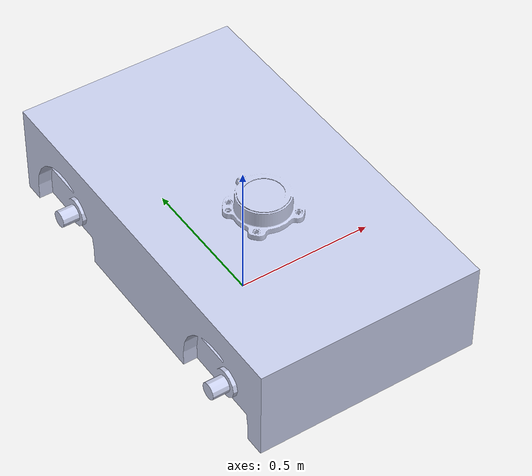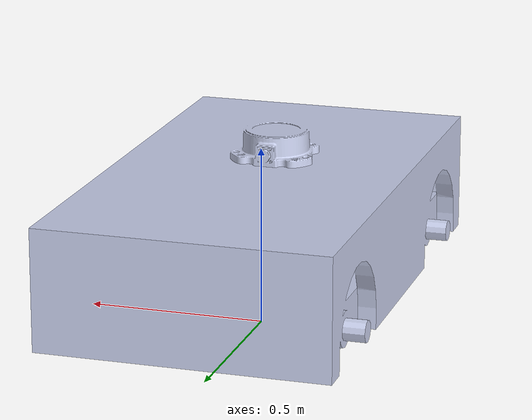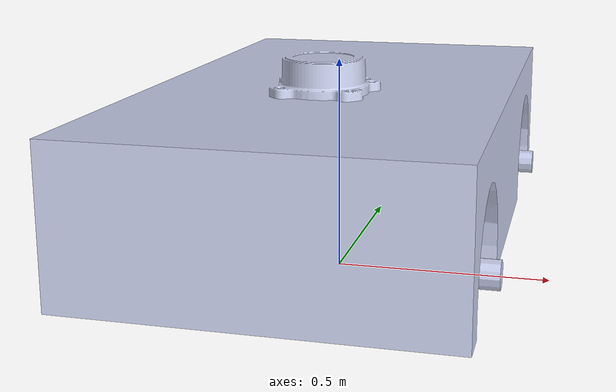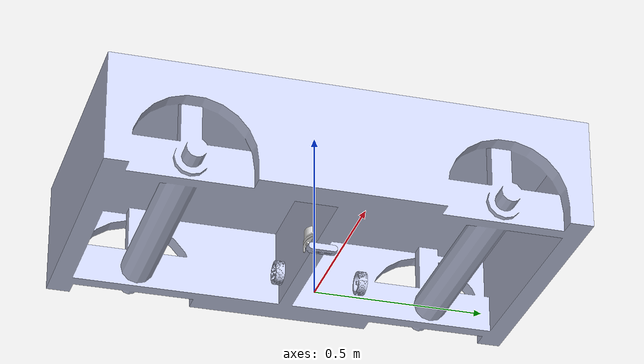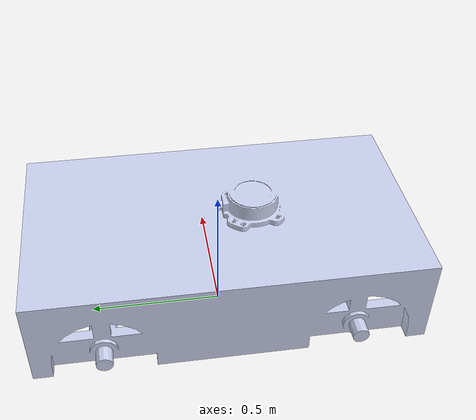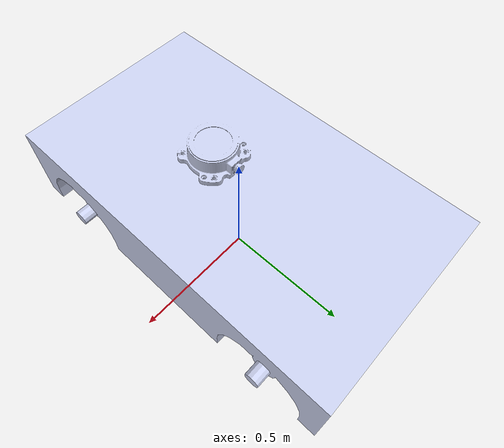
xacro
<?xml version='1.0'?>

<robot name="robot_description" xmlns:xacro="http://www.ros.org/wiki/xacro">

    <xacro:include filename="$(find robot_description)/urdf/materials.xacro" />
    <xacro:include filename="$(find robot_description)/urdf/robot.gazebo" />
    <xacro:include filename="$(find robot_description)/urdf/robot_description.urdf" />

</robot>

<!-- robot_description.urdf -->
<robot
  name="robot_description">
  <link
    name="base_link">
    <inertial>
      <origin
        xyz="0.0035754 -1.518E-09 0.05893"
        rpy="0 0 0" />
      <mass
        value="0.33865" />
      <inertia
        ixx="0.00089067"
        ixy="1.0848E-09"
        ixz="8.0631E-12"
        iyy="0.00089441"
        iyz="-3.7721E-13"
        izz="0.0017779" />
    </inertial>
    <visual>
      <origin
        xyz="0 0 0"
        rpy="0 0 0" />
      <geometry>
        <mesh
          filename="package://robot_description/meshes/base_link.STL" />
      </geometry>
      <material
        name="">
        <color
          rgba="0.79216 0.81961 0.93333 1" />
      </material>
    </visual>
    <collision>
      <origin
        xyz="0 0 0"
        rpy="0 0 0" />
      <geometry>
        <mesh
          filename="package://robot_description/meshes/base_link.STL" />
      </geometry>
    </collision>
  </link>
  <link
    name="r_wheel">
    <inertial>
      <origin
        xyz="-5.8816E-06 -0.013217 6.9219E-06"
        rpy="0 0 0" />
      <mass
        value="0.044423" />
      <inertia
        ixx="2.0144E-05"
        ixy="-2.1565E-10"
        ixz="-7.2576E-09"
        iyy="3.5561E-05"
        iyz="-1.0364E-10"
        izz="2.0144E-05" />
    </inertial>
    <visual>
      <origin
        xyz="0 0 0"
        rpy="0 0 0" />
      <geometry>
        <mesh
          filename="package://robot_description/meshes/r_wheel.STL" />
      </geometry>
      <material
        name="">
        <color
          rgba="0.79216 0.81961 0.93333 1" />
      </material>
    </visual>
    <collision>
      <origin
        xyz="0 0 0"
        rpy="0 0 0" />
      <geometry>
        <mesh
          filename="package://robot_description/meshes/r_wheel.STL" />
      </geometry>
    </collision>
  </link>
  <joint
    name="r_wheel_joint"
    type="continuous">
    <origin
      xyz="0.051833 -0.1085 0.02"
      rpy="0 0 0" />
    <parent
      link="base_link" />
    <child
      link="r_wheel" />
    <axis
      xyz="0 -1 0" />
  </joint>
  <link
    name="l_wheel">
    <inertial>
      <origin
        xyz="9.01458438498648E-06 0.0132166249702712 -1.11460776607009E-06"
        rpy="0 0 0" />
      <mass
        value="0.044422854949021" />
      <inertia
        ixx="2.01509333913829E-05"
        ixy="-3.18027235118427E-11"
        ixz="-2.83951902060619E-09"
        iyy="3.55612270238749E-05"
        iyz="2.37159316317813E-10"
        izz="2.0137574928078E-05" />
    </inertial>
    <visual>
      <origin
        xyz="0 0 0"
        rpy="0 0 0" />
      <geometry>
        <mesh
          filename="package://robot_description/meshes/l_wheel.STL" />
      </geometry>
      <material
        name="">
        <color
          rgba="0.792156862745098 0.819607843137255 0.933333333333333 1" />
      </material>
    </visual>
    <collision>
      <origin
        xyz="0 0 0"
        rpy="0 0 0" />
      <geometry>
        <mesh
          filename="package://robot_description/meshes/l_wheel.STL" />
      </geometry>
    </collision>
  </link>
  <joint
    name="l_wheel_joint"
    type="continuous">
    <origin
      xyz="0.051833 0.1085 0.02"
      rpy="0 0 0" />
    <parent
      link="base_link" />
    <child
      link="l_wheel" />
    <axis
      xyz="0 1 0" />
  </joint>
  <link
    name="camera_link">
    <inertial>
      <origin
        xyz="-0.0130484997995744 0.00024619675186878 -6.05673365648429E-05"
        rpy="0 0 0" />
      <mass
        value="0.0447522009689823" />
      <inertia
        ixx="2.72775274833716E-05"
        ixy="2.44341098323841E-07"
        ixz="-1.17396572383072E-09"
        iyy="3.94471808587631E-06"
        iyz="-2.80138997339365E-09"
        izz="2.73620912559789E-05" />
    </inertial>
    <visual>
      <origin
        xyz="0 0 0"
        rpy="0 0 0" />
      <geometry>
        <mesh
          filename="package://robot_description/meshes/camera_link.STL" />
      </geometry>
      <material
        name="">
        <color
          rgba="0.792156862745098 0.819607843137255 0.933333333333333 1" />
      </material>
    </visual>
    <collision>
      <origin
        xyz="0 0 0"
        rpy="0 0 0" />
      <geometry>
        <mesh
          filename="package://robot_description/meshes/camera_link.STL" />
      </geometry>
    </collision>
  </link>
  <joint
    name="camera_joint"
    type="fixed">
    <origin
      xyz="0.094783 0 0.0985"
      rpy="0 0 0" />
    <parent
      link="base_link" />
    <child
      link="camera_link" />
    <axis
      xyz="0 0 0" />
  </joint>
  <link
    name="base_laser">
    <inertial>
      <origin
        xyz="0 0 0"
        rpy="0 0 0" />
      <mass
        value="0" />
      <inertia
        ixx="0"
        ixy="0"
        ixz="0"
        iyy="0"
        iyz="0"
        izz="0" />
    </inertial>
    <visual>
      <origin
        xyz="0 0 0"
        rpy="0 0 0" />
      <geometry>
        <mesh
          filename="package://robot_description/meshes/base_laser.STL" />
      </geometry>
      <material
        name="">
        <color
          rgba="1 1 1 1" />
      </material>
    </visual>
    <collision>
      <origin
        xyz="0 0 0"
        rpy="0 0 0" />
      <geometry>
        <mesh
          filename="package://robot_description/meshes/base_laser.STL" />
      </geometry>
    </collision>
  </link>
  <joint
    name="base_laser"
    type="fixed">
    <origin
      xyz="0.037083276307275 0 0.152600000000001"
      rpy="0 0 0" />
    <parent
      link="base_link" />
    <child
      link="base_laser" />
    <axis
      xyz="0 0 0" />
  </joint>
</robot>
